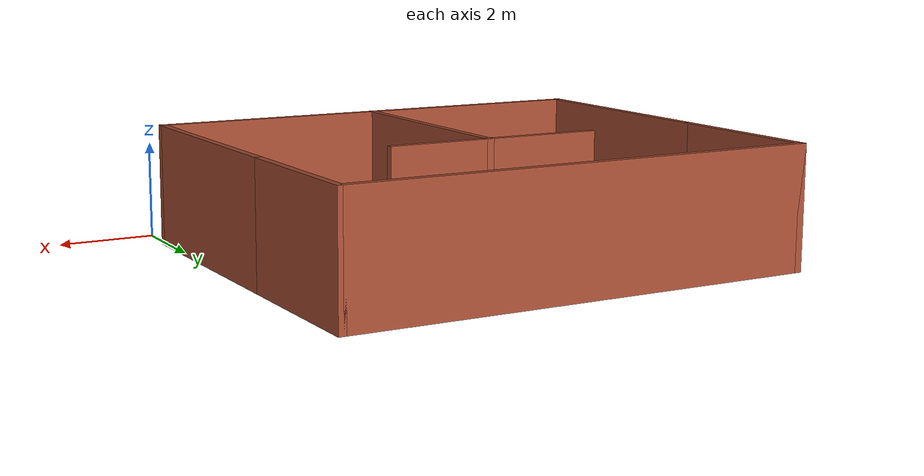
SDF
<?xml version='1.0'?>
<sdf version='1.6'>
  <model name='room'>
    <pose frame=''>-4.8338 5.04443 0 0 -0 0</pose>
    <link name='Wall_23'>
      <collision name='Wall_23_Collision'>
        <geometry>
          <box>
            <size>5 0.15 2.5</size>
          </box>
        </geometry>
        <pose frame=''>0 0 1.25 0 -0 0</pose>
      </collision>
      <visual name='Wall_23_Visual'>
        <pose frame=''>0 0 1.25 0 -0 0</pose>
        <geometry>
          <box>
            <size>5 0.15 2.5</size>
          </box>
        </geometry>
        <material>
          <script>
            <uri>file://media/materials/scripts/gazebo.material</uri>
            <name>Gazebo/Bricks</name>
          </script>
          <ambient>1 1 1 1</ambient>
        </material>
      </visual>
      <pose frame=''>-4.85 -1.675 0 0 0 -1.5708</pose>
    </link>
    <link name='Wall_24'>
      <collision name='Wall_24_Collision'>
        <geometry>
          <box>
            <size>5 0.15 2.5</size>
          </box>
        </geometry>
        <pose frame=''>0 0 1.25 0 -0 0</pose>
      </collision>
      <visual name='Wall_24_Visual'>
        <pose frame=''>0 0 1.25 0 -0 0</pose>
        <geometry>
          <box>
            <size>5 0.15 2.5</size>
          </box>
        </geometry>
        <material>
          <script>
            <uri>file://media/materials/scripts/gazebo.material</uri>
            <name>Gazebo/Bricks</name>
          </script>
          <ambient>1 1 1 1</ambient>
        </material>
      </visual>
      <pose frame=''>-2.425 -4.1 0 0 -0 0</pose>
    </link>
    <link name='Wall_27'>
      <collision name='Wall_27_Collision'>
        <geometry>
          <box>
            <size>5 0.15 2.5</size>
          </box>
        </geometry>
        <pose frame=''>0 0 1.25 0 -0 0</pose>
      </collision>
      <visual name='Wall_27_Visual'>
        <pose frame=''>0 0 1.25 0 -0 0</pose>
        <geometry>
          <box>
            <size>5 0.15 2.5</size>
          </box>
        </geometry>
        <material>
          <script>
            <uri>file://media/materials/scripts/gazebo.material</uri>
            <name>Gazebo/Bricks</name>
          </script>
          <ambient>1 1 1 1</ambient>
        </material>
      </visual>
      <pose frame=''>0 -1.675 0 0 0 -1.5708</pose>
    </link>
    <link name='Wall_30'>
      <collision name='Wall_30_Collision'>
        <geometry>
          <box>
            <size>5 0.15 2.5</size>
          </box>
        </geometry>
        <pose frame=''>0 0 1.25 0 -0 0</pose>
      </collision>
      <visual name='Wall_30_Visual'>
        <pose frame=''>0 0 1.25 0 -0 0</pose>
        <geometry>
          <box>
            <size>5 0.15 2.5</size>
          </box>
        </geometry>
        <material>
          <script>
            <uri>file://media/materials/scripts/gazebo.material</uri>
            <name>Gazebo/Bricks</name>
          </script>
          <ambient>1 1 1 1</ambient>
        </material>
      </visual>
      <pose frame=''>4.85 -1.675 0 0 0 -1.5708</pose>
    </link>
    <link name='Wall_31'>
      <collision name='Wall_31_Collision'>
        <geometry>
          <box>
            <size>5 0.15 2.5</size>
          </box>
        </geometry>
        <pose frame=''>0 0 1.25 0 -0 0</pose>
      </collision>
      <visual name='Wall_31_Visual'>
        <pose frame=''>0 0 1.25 0 -0 0</pose>
        <geometry>
          <box>
            <size>5 0.15 2.5</size>
          </box>
        </geometry>
        <material>
          <script>
            <uri>file://media/materials/scripts/gazebo.material</uri>
            <name>Gazebo/Bricks</name>
          </script>
          <ambient>1 1 1 1</ambient>
        </material>
      </visual>
      <pose frame=''>2.425 -4.1 0 0 -0 3.14159</pose>
    </link>
    <link name='Wall_36'>
      <collision name='Wall_36_Collision'>
        <geometry>
          <box>
            <size>3.5 0.15 2.5</size>
          </box>
        </geometry>
        <pose frame=''>0 0 1.25 0 -0 0</pose>
      </collision>
      <visual name='Wall_36_Visual'>
        <pose frame=''>0 0 1.25 0 -0 0</pose>
        <geometry>
          <box>
            <size>3.5 0.15 2.5</size>
          </box>
        </geometry>
        <material>
          <script>
            <uri>file://media/materials/scripts/gazebo.material</uri>
            <name>Gazebo/Bricks</name>
          </script>
          <ambient>1 1 1 1</ambient>
        </material>
      </visual>
      <pose frame=''>-4.85 2.425 0 0 -0 1.5708</pose>
    </link>
    <link name='Wall_37'>
      <collision name='Wall_37_Collision'>
        <geometry>
          <box>
            <size>9.75 0.15 2.5</size>
          </box>
        </geometry>
        <pose frame=''>0 0 1.25 0 -0 0</pose>
      </collision>
      <visual name='Wall_37_Visual'>
        <pose frame=''>0 0 1.25 0 -0 0</pose>
        <geometry>
          <box>
            <size>9.75 0.15 2.5</size>
          </box>
        </geometry>
        <material>
          <script>
            <uri>file://media/materials/scripts/gazebo.material</uri>
            <name>Gazebo/Bricks</name>
          </script>
          <ambient>1 1 1 1</ambient>
        </material>
      </visual>
      <pose frame=''>-0.05 4.1 0 0 -0 0</pose>
    </link>
    <link name='Wall_39'>
      <collision name='Wall_39_Collision'>
        <geometry>
          <box>
            <size>3.5 0.15 2.5</size>
          </box>
        </geometry>
        <pose frame=''>0 0 1.25 0 -0 0</pose>
      </collision>
      <visual name='Wall_39_Visual'>
        <pose frame=''>0 0 1.25 0 -0 0</pose>
        <geometry>
          <box>
            <size>3.5 0.15 2.5</size>
          </box>
        </geometry>
        <material>
          <script>
            <uri>file://media/materials/scripts/gazebo.material</uri>
            <name>Gazebo/Bricks</name>
          </script>
          <ambient>1 1 1 1</ambient>
        </material>
      </visual>
      <pose frame=''>4.85 2.425 0 0 -0 1.5708</pose>
    </link>
    <link name='Wall_41'>
      <collision name='Wall_41_Collision'>
        <geometry>
          <box>
            <size>2.25 0.15 2.5</size>
          </box>
        </geometry>
        <pose frame=''>0 0 1.25 0 -0 0</pose>
      </collision>
      <visual name='Wall_41_Visual'>
        <pose frame=''>0 0 1.25 0 -0 0</pose>
        <geometry>
          <box>
            <size>2.25 0.15 2.5</size>
          </box>
        </geometry>
        <material>
          <script>
            <uri>file://media/materials/scripts/gazebo.material</uri>
            <name>Gazebo/Bricks</name>
          </script>
          <ambient>1 1 1 1</ambient>
        </material>
      </visual>
      <pose frame=''>1.05 0.75 0 0 -0 0</pose>
    </link>
    <link name='Wall_43'>
      <collision name='Wall_43_Collision'>
        <geometry>
          <box>
            <size>2.5 0.15 2.5</size>
          </box>
        </geometry>
        <pose frame=''>0 0 1.25 0 -0 0</pose>
      </collision>
      <visual name='Wall_43_Visual'>
        <pose frame=''>0 0 1.25 0 -0 0</pose>
        <geometry>
          <box>
            <size>2.5 0.15 2.5</size>
          </box>
        </geometry>
        <material>
          <script>
            <uri>file://media/materials/scripts/gazebo.material</uri>
            <name>Gazebo/Bricks</name>
          </script>
          <ambient>1 1 1 1</ambient>
        </material>
      </visual>
      <pose frame=''>-1.175 0.75 0 0 -0 3.14159</pose>
    </link>
    <static>1</static>
  </model>
</sdf>
